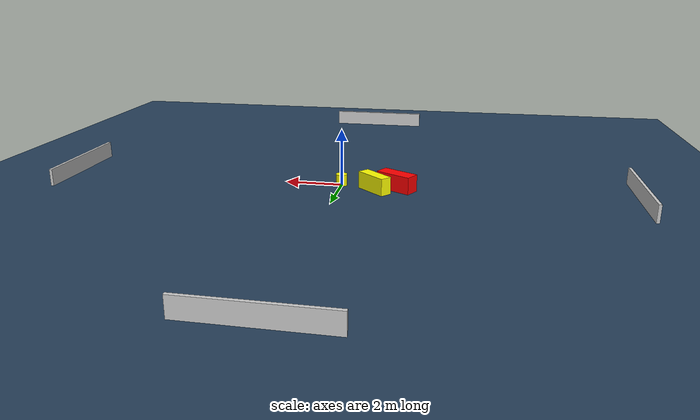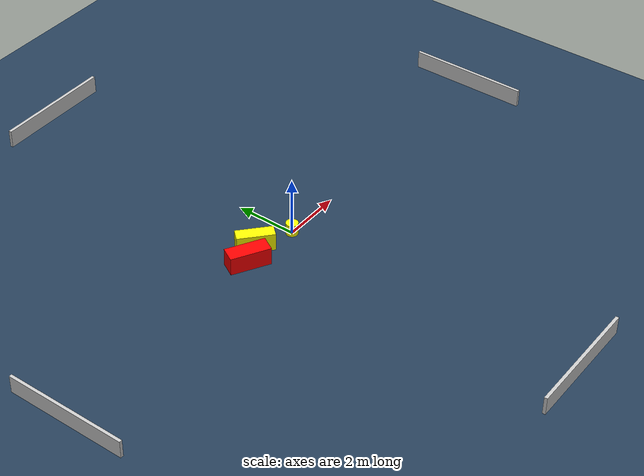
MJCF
<?xml version="1.0" ?>
<mujoco model="generated_environment">
  <option timestep="0.01" integrator="RK4" cone="elliptic"/>
  <default>
    <geom density="1"/>
  </default>
  <asset>
    <texture builtin="gradient" height="3072" name="skybox" rgb1="0.3 0.5 0.7" rgb2="0 0 0" type="skybox" width="512"/>
    <texture builtin="checker" height="300" name="groundplane" rgb1="0.2 0.3 0.4" rgb2="0.1 0.2 0.3" type="2d" width="300"/>
    <material name="groundplane" reflectance="0.2" texrepeat="5 5" texture="groundplane"/>
  </asset>
  <worldbody>
    <light dir="0 0 -1" directional="true" pos="0 0 1.5"/>
    <geom condim="3" friction="0.5 0.005 0.001" material="groundplane" name="floor" pos="0 0 0" size="0 0 0.05" type="plane"/>
    <body name="walls">
      <geom name="wall_1" condim="4" pos="-10.0 0.0 0.3" rgba="0.800000011920929 0.800000011920929 0.800000011920929 1.0" size="0.05 2.0 0.3" type="box"/>
      <geom name="wall_2" condim="4" pos="10.0 0.0 0.3" rgba="0.800000011920929 0.800000011920929 0.800000011920929 1.0" size="0.05 2.0 0.3" type="box"/>
      <geom name="wall_3" condim="4" pos="0.0 -10.0 0.3" rgba="0.800000011920929 0.800000011920929 0.800000011920929 1.0" size="2.0 0.05 0.3" type="box"/>
      <geom name="wall_4" condim="4" pos="0.0 10.0 0.3" rgba="0.800000011920929 0.800000011920929 0.800000011920929 1.0" size="2.0 0.05 0.3" type="box"/>
    </body>
    <body name="robot">
      <joint name="joint_x" type="slide" pos="0 0 0" axis="1 0 0"/>
      <joint name="joint_y" type="slide" pos="0 0 0" axis="0 1 0"/>
      <geom name="robot" type="cylinder" pos="0.0 0.0 0.2" size="0.2 0.2 0.0" mass="5.0" friction="1.0 0.005 0.0001" condim="4" rgba="1.0 1.0 0.0 1.0"/>
    </body>
    <body name="obstacle_1_movable">
      <geom name="obstacle_1_movable" condim="4" pos="-1.2346742459651037 0.4604743845251699 0.3" euler="0 0 137.9785499203615" friction="0.0 0.005 0.001" rgba="1.0 1.0 0.0 1.0" size="0.602601024946689 0.20769329304064346 0.3" type="box" mass="0.1"/>
      <joint type="free"/>
    </body>
    <body name="obstacle_2_static">
      <geom name="obstacle_2_static" condim="4" pos="-1.9632918310453307 0.16244257604431772 0.3" euler="0 0 60.517987773331384" friction="0.0 0.005 0.001" rgba="1.0 0.0 0.0 1.0" size="0.26354325637694836 0.658295088951736 0.3" type="box"/>
    </body>
  </worldbody>
  <actuator>
    <motor name="actuator_x" joint="joint_x" gear="1" ctrlrange="-1 1"/>
    <motor name="actuator_y" joint="joint_y" gear="1" ctrlrange="-1 1"/>
  </actuator>
</mujoco>
